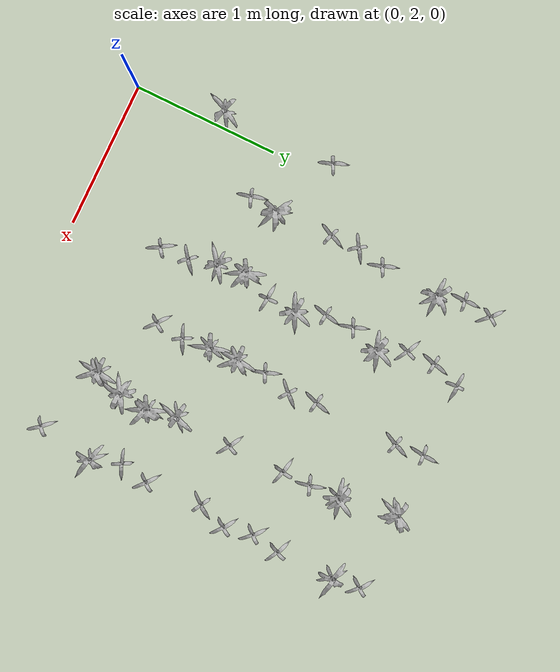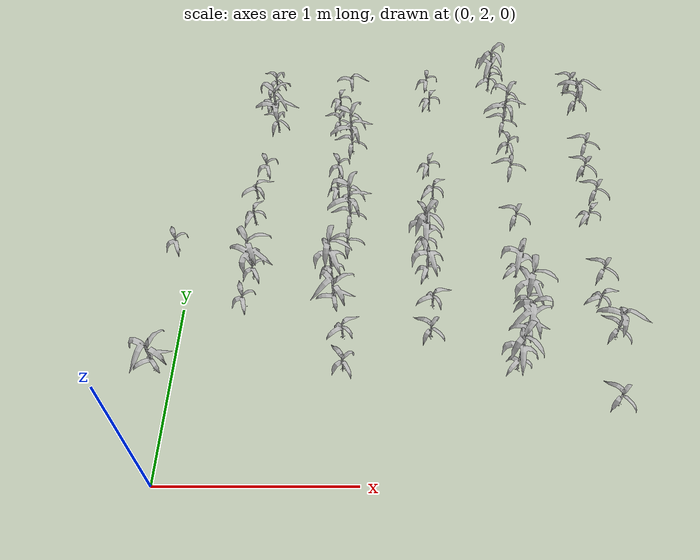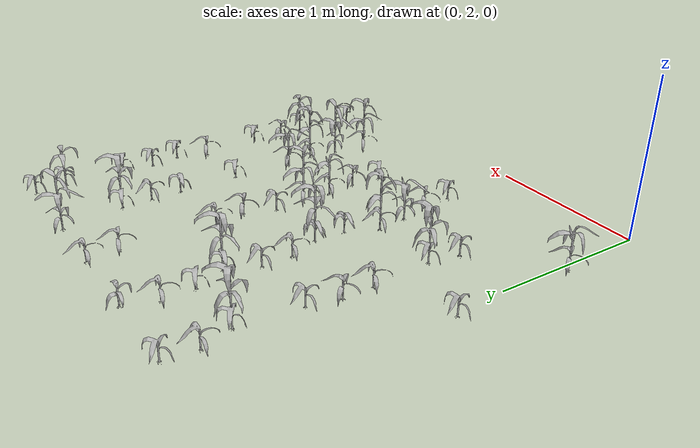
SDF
<sdf version="1.7">
 <world name="default">
  <model name="maize_-0.08042333630782769_2.6100000000000003">
   <static>1</static>
   <link name="link">
    <inertial>
     <mass>0.2</mass>
     <inertia>
      <ixx>0.166667</ixx>
      <ixy>0</ixy>
      <ixz>0</ixz>
      <iyy>0.166667</iyy>
      <iyz>0</iyz>
      <izz>0.166667</izz>
     </inertia>
    </inertial>
    <collision name="collision">
     <geometry><mesh><uri>model://corn_4/meshes/corn.dae</uri><scale>0.25 0.25 0.25</scale></mesh></geometry>
     <surface>
      <friction><ode><mu>0</mu><mu2>0</mu2></ode></friction>
      <contact><ode><kp>0</kp><kd>0</kd><max_vel>0</max_vel><min_depth>0.002</min_depth></ode></contact>
     </surface>
    </collision>
    <visual name="visual">
     <geometry><mesh><uri>model://corn_4/meshes/corn.dae</uri><scale>0.25 0.25 0.25</scale></mesh></geometry>
    </visual>
    <velocity_decay><linear>0</linear><angular>0</angular></velocity_decay>
   </link>
   <pose>-0.080423 2.61 0.05 0 -0 0.571796</pose>
  </model>
  <model name="maize_-0.085918898551127_3.3899999999999997">
   <static>1</static>
   <link name="link">
    <inertial>
     <mass>0.2</mass>
     <inertia>
      <ixx>0.166667</ixx>
      <ixy>0</ixy>
      <ixz>0</ixz>
      <iyy>0.166667</iyy>
      <iyz>0</iyz>
      <izz>0.166667</izz>
     </inertia>
    </inertial>
    <collision name="collision">
     <geometry><mesh><uri>model://corn_3/meshes/corn.dae</uri><scale>0.25 0.25 0.25</scale></mesh></geometry>
     <surface>
      <friction><ode><mu>0</mu><mu2>0</mu2></ode></friction>
      <contact><ode><kp>0</kp><kd>0</kd><max_vel>0</max_vel><min_depth>0.002</min_depth></ode></contact>
     </surface>
    </collision>
    <visual name="visual">
     <geometry><mesh><uri>model://corn_3/meshes/corn.dae</uri><scale>0.25 0.25 0.25</scale></mesh></geometry>
    </visual>
    <velocity_decay><linear>0</linear><angular>0</angular></velocity_decay>
   </link>
   <pose>-0.085919 3.39 0.05 0 -0 1.98753</pose>
  </model>
  <model name="maize_0.3411008554973863_3.000000000000001">
   <static>1</static>
   <link name="link">
    <inertial>
     <mass>0.2</mass>
     <inertia>
      <ixx>0.166667</ixx>
      <ixy>0</ixy>
      <ixz>0</ixz>
      <iyy>0.166667</iyy>
      <iyz>0</iyz>
      <izz>0.166667</izz>
     </inertia>
    </inertial>
    <collision name="collision">
     <geometry><mesh><uri>model://corn_3/meshes/corn.dae</uri><scale>0.25 0.25 0.25</scale></mesh></geometry>
     <surface>
      <friction><ode><mu>0</mu><mu2>0</mu2></ode></friction>
      <contact><ode><kp>0</kp><kd>0</kd><max_vel>0</max_vel><min_depth>0.002</min_depth></ode></contact>
     </surface>
    </collision>
    <visual name="visual">
     <geometry><mesh><uri>model://corn_3/meshes/corn.dae</uri><scale>0.25 0.25 0.25</scale></mesh></geometry>
    </visual>
    <velocity_decay><linear>0</linear><angular>0</angular></velocity_decay>
   </link>
   <pose>0.341101 3 0.05 0 -0 1.88382</pose>
  </model>
  <model name="maize_0.37378825698575685_3.1950000000000003">
   <static>1</static>
   <link name="link">
    <inertial>
     <mass>0.2</mass>
     <inertia>
      <ixx>0.166667</ixx>
      <ixy>0</ixy>
      <ixz>0</ixz>
      <iyy>0.166667</iyy>
      <iyz>0</iyz>
      <izz>0.166667</izz>
     </inertia>
    </inertial>
    <collision name="collision">
     <geometry><mesh><uri>model://corn_5/meshes/corn.dae</uri><scale>0.25 0.25 0.25</scale></mesh></geometry>
     <surface>
      <friction><ode><mu>0</mu><mu2>0</mu2></ode></friction>
      <contact><ode><kp>0</kp><kd>0</kd><max_vel>0</max_vel><min_depth>0.002</min_depth></ode></contact>
     </surface>
    </collision>
    <visual name="visual">
     <geometry><mesh><uri>model://corn_5/meshes/corn.dae</uri><scale>0.25 0.25 0.25</scale></mesh></geometry>
    </visual>
    <velocity_decay><linear>0</linear><angular>0</angular></velocity_decay>
   </link>
   <pose>0.373788 3.195 0.05 0 -0 2.13022</pose>
  </model>
  <model name="maize_0.34076048004621395_3.585">
   <static>1</static>
   <link name="link">
    <inertial>
     <mass>0.2</mass>
     <inertia>
      <ixx>0.166667</ixx>
      <ixy>0</ixy>
      <ixz>0</ixz>
      <iyy>0.166667</iyy>
      <iyz>0</iyz>
      <izz>0.166667</izz>
     </inertia>
    </inertial>
    <collision name="collision">
     <geometry><mesh><uri>model://corn_3/meshes/corn.dae</uri><scale>0.25 0.25 0.25</scale></mesh></geometry>
     <surface>
      <friction><ode><mu>0</mu><mu2>0</mu2></ode></friction>
      <contact><ode><kp>0</kp><kd>0</kd><max_vel>0</max_vel><min_depth>0.002</min_depth></ode></contact>
     </surface>
    </collision>
    <visual name="visual">
     <geometry><mesh><uri>model://corn_3/meshes/corn.dae</uri><scale>0.25 0.25 0.25</scale></mesh></geometry>
    </visual>
    <velocity_decay><linear>0</linear><angular>0</angular></velocity_decay>
   </link>
   <pose>0.34076 3.585 0.05 0 -0 1.20884</pose>
  </model>
  <model name="maize_0.33418059003254974_3.7800000000000002">
   <static>1</static>
   <link name="link">
    <inertial>
     <mass>0.2</mass>
     <inertia>
      <ixx>0.166667</ixx>
      <ixy>0</ixy>
      <ixz>0</ixz>
      <iyy>0.166667</iyy>
      <iyz>0</iyz>
      <izz>0.166667</izz>
     </inertia>
    </inertial>
    <collision name="collision">
     <geometry><mesh><uri>model://corn_3/meshes/corn.dae</uri><scale>0.25 0.25 0.25</scale></mesh></geometry>
     <surface>
      <friction><ode><mu>0</mu><mu2>0</mu2></ode></friction>
      <contact><ode><kp>0</kp><kd>0</kd><max_vel>0</max_vel><min_depth>0.002</min_depth></ode></contact>
     </surface>
    </collision>
    <visual name="visual">
     <geometry><mesh><uri>model://corn_3/meshes/corn.dae</uri><scale>0.25 0.25 0.25</scale></mesh></geometry>
    </visual>
    <velocity_decay><linear>0</linear><angular>0</angular></velocity_decay>
   </link>
   <pose>0.334181 3.78 0.05 0 -0 0.619677</pose>
  </model>
  <model name="maize_0.3775492834261159_3.9750000000000005">
   <static>1</static>
   <link name="link">
    <inertial>
     <mass>0.2</mass>
     <inertia>
      <ixx>0.166667</ixx>
      <ixy>0</ixy>
      <ixz>0</ixz>
      <iyy>0.166667</iyy>
      <iyz>0</iyz>
      <izz>0.166667</izz>
     </inertia>
    </inertial>
    <collision name="collision">
     <geometry><mesh><uri>model://corn_3/meshes/corn.dae</uri><scale>0.25 0.25 0.25</scale></mesh></geometry>
     <surface>
      <friction><ode><mu>0</mu><mu2>0</mu2></ode></friction>
      <contact><ode><kp>0</kp><kd>0</kd><max_vel>0</max_vel><min_depth>0.002</min_depth></ode></contact>
     </surface>
    </collision>
    <visual name="visual">
     <geometry><mesh><uri>model://corn_3/meshes/corn.dae</uri><scale>0.25 0.25 0.25</scale></mesh></geometry>
    </visual>
    <velocity_decay><linear>0</linear><angular>0</angular></velocity_decay>
   </link>
   <pose>0.377549 3.975 0.05 0 -0 1.95285</pose>
  </model>
  <model name="maize_0.41155645204705177_4.365000000000001">
   <static>1</static>
   <link name="link">
    <inertial>
     <mass>0.2</mass>
     <inertia>
      <ixx>0.166667</ixx>
      <ixy>0</ixy>
      <ixz>0</ixz>
      <iyy>0.166667</iyy>
      <iyz>0</iyz>
      <izz>0.166667</izz>
     </inertia>
    </inertial>
    <collision name="collision">
     <geometry><mesh><uri>model://corn_5/meshes/corn.dae</uri><scale>0.25 0.25 0.25</scale></mesh></geometry>
     <surface>
      <friction><ode><mu>0</mu><mu2>0</mu2></ode></friction>
      <contact><ode><kp>0</kp><kd>0</kd><max_vel>0</max_vel><min_depth>0.002</min_depth></ode></contact>
     </surface>
    </collision>
    <visual name="visual">
     <geometry><mesh><uri>model://corn_5/meshes/corn.dae</uri><scale>0.25 0.25 0.25</scale></mesh></geometry>
    </visual>
    <velocity_decay><linear>0</linear><angular>0</angular></velocity_decay>
   </link>
   <pose>0.411556 4.365 0.05 0 -0 2.5874</pose>
  </model>
  <model name="maize_0.3461602176183782_4.56">
   <static>1</static>
   <link name="link">
    <inertial>
     <mass>0.2</mass>
     <inertia>
      <ixx>0.166667</ixx>
      <ixy>0</ixy>
      <ixz>0</ixz>
      <iyy>0.166667</iyy>
      <iyz>0</iyz>
      <izz>0.166667</izz>
     </inertia>
    </inertial>
    <collision name="collision">
     <geometry><mesh><uri>model://corn_3/meshes/corn.dae</uri><scale>0.25 0.25 0.25</scale></mesh></geometry>
     <surface>
      <friction><ode><mu>0</mu><mu2>0</mu2></ode></friction>
      <contact><ode><kp>0</kp><kd>0</kd><max_vel>0</max_vel><min_depth>0.002</min_depth></ode></contact>
     </surface>
    </collision>
    <visual name="visual">
     <geometry><mesh><uri>model://corn_3/meshes/corn.dae</uri><scale>0.25 0.25 0.25</scale></mesh></geometry>
    </visual>
    <velocity_decay><linear>0</linear><angular>0</angular></velocity_decay>
   </link>
   <pose>0.34616 4.56 0.05 0 -0 1.61785</pose>
  </model>
  <model name="maize_0.3684425402078514_4.755">
   <static>1</static>
   <link name="link">
    <inertial>
     <mass>0.2</mass>
     <inertia>
      <ixx>0.166667</ixx>
      <ixy>0</ixy>
      <ixz>0</ixz>
      <iyy>0.166667</iyy>
      <iyz>0</iyz>
      <izz>0.166667</izz>
     </inertia>
    </inertial>
    <collision name="collision">
     <geometry><mesh><uri>model://corn_3/meshes/corn.dae</uri><scale>0.25 0.25 0.25</scale></mesh></geometry>
     <surface>
      <friction><ode><mu>0</mu><mu2>0</mu2></ode></friction>
      <contact><ode><kp>0</kp><kd>0</kd><max_vel>0</max_vel><min_depth>0.002</min_depth></ode></contact>
     </surface>
    </collision>
    <visual name="visual">
     <geometry><mesh><uri>model://corn_3/meshes/corn.dae</uri><scale>0.25 0.25 0.25</scale></mesh></geometry>
    </visual>
    <velocity_decay><linear>0</linear><angular>0</angular></velocity_decay>
   </link>
   <pose>0.368443 4.755 0.05 0 -0 2.44664</pose>
  </model>
  <model name="maize_0.897702557518457_2.6100000000000003">
   <static>1</static>
   <link name="link">
    <inertial>
     <mass>0.2</mass>
     <inertia>
      <ixx>0.166667</ixx>
      <ixy>0</ixy>
      <ixz>0</ixz>
      <iyy>0.166667</iyy>
      <iyz>0</iyz>
      <izz>0.166667</izz>
     </inertia>
    </inertial>
    <collision name="collision">
     <geometry><mesh><uri>model://corn_3/meshes/corn.dae</uri><scale>0.25 0.25 0.25</scale></mesh></geometry>
     <surface>
      <friction><ode><mu>0</mu><mu2>0</mu2></ode></friction>
      <contact><ode><kp>0</kp><kd>0</kd><max_vel>0</max_vel><min_depth>0.002</min_depth></ode></contact>
     </surface>
    </collision>
    <visual name="visual">
     <geometry><mesh><uri>model://corn_3/meshes/corn.dae</uri><scale>0.25 0.25 0.25</scale></mesh></geometry>
    </visual>
    <velocity_decay><linear>0</linear><angular>0</angular></velocity_decay>
   </link>
   <pose>0.897703 2.61 0.05 0 -0 2.17253</pose>
  </model>
  <model name="maize_0.8880366280184124_2.8050000000000006">
   <static>1</static>
   <link name="link">
    <inertial>
     <mass>0.2</mass>
     <inertia>
      <ixx>0.166667</ixx>
      <ixy>0</ixy>
      <ixz>0</ixz>
      <iyy>0.166667</iyy>
      <iyz>0</iyz>
      <izz>0.166667</izz>
     </inertia>
    </inertial>
    <collision name="collision">
     <geometry><mesh><uri>model://corn_3/meshes/corn.dae</uri><scale>0.25 0.25 0.25</scale></mesh></geometry>
     <surface>
      <friction><ode><mu>0</mu><mu2>0</mu2></ode></friction>
      <contact><ode><kp>0</kp><kd>0</kd><max_vel>0</max_vel><min_depth>0.002</min_depth></ode></contact>
     </surface>
    </collision>
    <visual name="visual">
     <geometry><mesh><uri>model://corn_3/meshes/corn.dae</uri><scale>0.25 0.25 0.25</scale></mesh></geometry>
    </visual>
    <velocity_decay><linear>0</linear><angular>0</angular></velocity_decay>
   </link>
   <pose>0.888037 2.805 0.05 0 -0 0.738506</pose>
  </model>
  <model name="maize_0.8357499517827016_3.000000000000001">
   <static>1</static>
   <link name="link">
    <inertial>
     <mass>0.2</mass>
     <inertia>
      <ixx>0.166667</ixx>
      <ixy>0</ixy>
      <ixz>0</ixz>
      <iyy>0.166667</iyy>
      <iyz>0</iyz>
      <izz>0.166667</izz>
     </inertia>
    </inertial>
    <collision name="collision">
     <geometry><mesh><uri>model://corn_4/meshes/corn.dae</uri><scale>0.25 0.25 0.25</scale></mesh></geometry>
     <surface>
      <friction><ode><mu>0</mu><mu2>0</mu2></ode></friction>
      <contact><ode><kp>0</kp><kd>0</kd><max_vel>0</max_vel><min_depth>0.002</min_depth></ode></contact>
     </surface>
    </collision>
    <visual name="visual">
     <geometry><mesh><uri>model://corn_4/meshes/corn.dae</uri><scale>0.25 0.25 0.25</scale></mesh></geometry>
    </visual>
    <velocity_decay><linear>0</linear><angular>0</angular></velocity_decay>
   </link>
   <pose>0.83575 3 0.05 0 -0 0.106267</pose>
  </model>
  <model name="maize_0.8121609762686527_3.1950000000000003">
   <static>1</static>
   <link name="link">
    <inertial>
     <mass>0.2</mass>
     <inertia>
      <ixx>0.166667</ixx>
      <ixy>0</ixy>
      <ixz>0</ixz>
      <iyy>0.166667</iyy>
      <iyz>0</iyz>
      <izz>0.166667</izz>
     </inertia>
    </inertial>
    <collision name="collision">
     <geometry><mesh><uri>model://corn_5/meshes/corn.dae</uri><scale>0.25 0.25 0.25</scale></mesh></geometry>
     <surface>
      <friction><ode><mu>0</mu><mu2>0</mu2></ode></friction>
      <contact><ode><kp>0</kp><kd>0</kd><max_vel>0</max_vel><min_depth>0.002</min_depth></ode></contact>
     </surface>
    </collision>
    <visual name="visual">
     <geometry><mesh><uri>model://corn_5/meshes/corn.dae</uri><scale>0.25 0.25 0.25</scale></mesh></geometry>
    </visual>
    <velocity_decay><linear>0</linear><angular>0</angular></velocity_decay>
   </link>
   <pose>0.812161 3.195 0.05 0 -0 1.44151</pose>
  </model>
  <model name="maize_0.8960195117216863_3.3899999999999997">
   <static>1</static>
   <link name="link">
    <inertial>
     <mass>0.2</mass>
     <inertia>
      <ixx>0.166667</ixx>
      <ixy>0</ixy>
      <ixz>0</ixz>
      <iyy>0.166667</iyy>
      <iyz>0</iyz>
      <izz>0.166667</izz>
     </inertia>
    </inertial>
    <collision name="collision">
     <geometry><mesh><uri>model://corn_3/meshes/corn.dae</uri><scale>0.25 0.25 0.25</scale></mesh></geometry>
     <surface>
      <friction><ode><mu>0</mu><mu2>0</mu2></ode></friction>
      <contact><ode><kp>0</kp><kd>0</kd><max_vel>0</max_vel><min_depth>0.002</min_depth></ode></contact>
     </surface>
    </collision>
    <visual name="visual">
     <geometry><mesh><uri>model://corn_3/meshes/corn.dae</uri><scale>0.25 0.25 0.25</scale></mesh></geometry>
    </visual>
    <velocity_decay><linear>0</linear><angular>0</angular></velocity_decay>
   </link>
   <pose>0.89602 3.39 0.05 0 -0 3.11103</pose>
  </model>
  <model name="maize_0.9029863530750648_3.585">
   <static>1</static>
   <link name="link">
    <inertial>
     <mass>0.2</mass>
     <inertia>
      <ixx>0.166667</ixx>
      <ixy>0</ixy>
      <ixz>0</ixz>
      <iyy>0.166667</iyy>
      <iyz>0</iyz>
      <izz>0.166667</izz>
     </inertia>
    </inertial>
    <collision name="collision">
     <geometry><mesh><uri>model://corn_5/meshes/corn.dae</uri><scale>0.25 0.25 0.25</scale></mesh></geometry>
     <surface>
      <friction><ode><mu>0</mu><mu2>0</mu2></ode></friction>
      <contact><ode><kp>0</kp><kd>0</kd><max_vel>0</max_vel><min_depth>0.002</min_depth></ode></contact>
     </surface>
    </collision>
    <visual name="visual">
     <geometry><mesh><uri>model://corn_5/meshes/corn.dae</uri><scale>0.25 0.25 0.25</scale></mesh></geometry>
    </visual>
    <velocity_decay><linear>0</linear><angular>0</angular></velocity_decay>
   </link>
   <pose>0.902986 3.585 0.05 0 -0 3.03287</pose>
  </model>
  <model name="maize_0.8257128723859354_3.7800000000000002">
   <static>1</static>
   <link name="link">
    <inertial>
     <mass>0.2</mass>
     <inertia>
      <ixx>0.166667</ixx>
      <ixy>0</ixy>
      <ixz>0</ixz>
      <iyy>0.166667</iyy>
      <iyz>0</iyz>
      <izz>0.166667</izz>
     </inertia>
    </inertial>
    <collision name="collision">
     <geometry><mesh><uri>model://corn_3/meshes/corn.dae</uri><scale>0.25 0.25 0.25</scale></mesh></geometry>
     <surface>
      <friction><ode><mu>0</mu><mu2>0</mu2></ode></friction>
      <contact><ode><kp>0</kp><kd>0</kd><max_vel>0</max_vel><min_depth>0.002</min_depth></ode></contact>
     </surface>
    </collision>
    <visual name="visual">
     <geometry><mesh><uri>model://corn_3/meshes/corn.dae</uri><scale>0.25 0.25 0.25</scale></mesh></geometry>
    </visual>
    <velocity_decay><linear>0</linear><angular>0</angular></velocity_decay>
   </link>
   <pose>0.825713 3.78 0.05 0 -0 1.40702</pose>
  </model>
  <model name="maize_0.8211886158206442_3.9750000000000005">
   <static>1</static>
   <link name="link">
    <inertial>
     <mass>0.2</mass>
     <inertia>
      <ixx>0.166667</ixx>
      <ixy>0</ixy>
      <ixz>0</ixz>
      <iyy>0.166667</iyy>
      <iyz>0</iyz>
      <izz>0.166667</izz>
     </inertia>
    </inertial>
    <collision name="collision">
     <geometry><mesh><uri>model://corn_3/meshes/corn.dae</uri><scale>0.25 0.25 0.25</scale></mesh></geometry>
     <surface>
      <friction><ode><mu>0</mu><mu2>0</mu2></ode></friction>
      <contact><ode><kp>0</kp><kd>0</kd><max_vel>0</max_vel><min_depth>0.002</min_depth></ode></contact>
     </surface>
    </collision>
    <visual name="visual">
     <geometry><mesh><uri>model://corn_3/meshes/corn.dae</uri><scale>0.25 0.25 0.25</scale></mesh></geometry>
    </visual>
    <velocity_decay><linear>0</linear><angular>0</angular></velocity_decay>
   </link>
   <pose>0.821189 3.975 0.05 0 -0 1.94189</pose>
  </model>
  <model name="maize_0.8956969560083625_4.170000000000001">
   <static>1</static>
   <link name="link">
    <inertial>
     <mass>0.2</mass>
     <inertia>
      <ixx>0.166667</ixx>
      <ixy>0</ixy>
      <ixz>0</ixz>
      <iyy>0.166667</iyy>
      <iyz>0</iyz>
      <izz>0.166667</izz>
     </inertia>
    </inertial>
    <collision name="collision">
     <geometry><mesh><uri>model://corn_5/meshes/corn.dae</uri><scale>0.25 0.25 0.25</scale></mesh></geometry>
     <surface>
      <friction><ode><mu>0</mu><mu2>0</mu2></ode></friction>
      <contact><ode><kp>0</kp><kd>0</kd><max_vel>0</max_vel><min_depth>0.002</min_depth></ode></contact>
     </surface>
    </collision>
    <visual name="visual">
     <geometry><mesh><uri>model://corn_5/meshes/corn.dae</uri><scale>0.25 0.25 0.25</scale></mesh></geometry>
    </visual>
    <velocity_decay><linear>0</linear><angular>0</angular></velocity_decay>
   </link>
   <pose>0.895697 4.17 0.05 0 -0 2.92846</pose>
  </model>
  <model name="maize_0.8104739515235799_4.365000000000001">
   <static>1</static>
   <link name="link">
    <inertial>
     <mass>0.2</mass>
     <inertia>
      <ixx>0.166667</ixx>
      <ixy>0</ixy>
      <ixz>0</ixz>
      <iyy>0.166667</iyy>
      <iyz>0</iyz>
      <izz>0.166667</izz>
     </inertia>
    </inertial>
    <collision name="collision">
     <geometry><mesh><uri>model://corn_3/meshes/corn.dae</uri><scale>0.25 0.25 0.25</scale></mesh></geometry>
     <surface>
      <friction><ode><mu>0</mu><mu2>0</mu2></ode></friction>
      <contact><ode><kp>0</kp><kd>0</kd><max_vel>0</max_vel><min_depth>0.002</min_depth></ode></contact>
     </surface>
    </collision>
    <visual name="visual">
     <geometry><mesh><uri>model://corn_3/meshes/corn.dae</uri><scale>0.25 0.25 0.25</scale></mesh></geometry>
    </visual>
    <velocity_decay><linear>0</linear><angular>0</angular></velocity_decay>
   </link>
   <pose>0.810474 4.365 0.05 0 -0 2.7183</pose>
  </model>
  <model name="maize_0.8064081126665279_4.56">
   <static>1</static>
   <link name="link">
    <inertial>
     <mass>0.2</mass>
     <inertia>
      <ixx>0.166667</ixx>
      <ixy>0</ixy>
      <ixz>0</ixz>
      <iyy>0.166667</iyy>
      <iyz>0</iyz>
      <izz>0.166667</izz>
     </inertia>
    </inertial>
    <collision name="collision">
     <geometry><mesh><uri>model://corn_3/meshes/corn.dae</uri><scale>0.25 0.25 0.25</scale></mesh></geometry>
     <surface>
      <friction><ode><mu>0</mu><mu2>0</mu2></ode></friction>
      <contact><ode><kp>0</kp><kd>0</kd><max_vel>0</max_vel><min_depth>0.002</min_depth></ode></contact>
     </surface>
    </collision>
    <visual name="visual">
     <geometry><mesh><uri>model://corn_3/meshes/corn.dae</uri><scale>0.25 0.25 0.25</scale></mesh></geometry>
    </visual>
    <velocity_decay><linear>0</linear><angular>0</angular></velocity_decay>
   </link>
   <pose>0.806408 4.56 0.05 0 -0 1.3644</pose>
  </model>
  <model name="maize_0.8731541109942756_4.755">
   <static>1</static>
   <link name="link">
    <inertial>
     <mass>0.2</mass>
     <inertia>
      <ixx>0.166667</ixx>
      <ixy>0</ixy>
      <ixz>0</ixz>
      <iyy>0.166667</iyy>
      <iyz>0</iyz>
      <izz>0.166667</izz>
     </inertia>
    </inertial>
    <collision name="collision">
     <geometry><mesh><uri>model://corn_3/meshes/corn.dae</uri><scale>0.25 0.25 0.25</scale></mesh></geometry>
     <surface>
      <friction><ode><mu>0</mu><mu2>0</mu2></ode></friction>
      <contact><ode><kp>0</kp><kd>0</kd><max_vel>0</max_vel><min_depth>0.002</min_depth></ode></contact>
     </surface>
    </collision>
    <visual name="visual">
     <geometry><mesh><uri>model://corn_3/meshes/corn.dae</uri><scale>0.25 0.25 0.25</scale></mesh></geometry>
    </visual>
    <velocity_decay><linear>0</linear><angular>0</angular></velocity_decay>
   </link>
   <pose>0.873154 4.755 0.05 0 -0 0.007766</pose>
  </model>
  <model name="maize_1.3567621947153226_2.8050000000000006">
   <static>1</static>
   <link name="link">
    <inertial>
     <mass>0.2</mass>
     <inertia>
      <ixx>0.166667</ixx>
      <ixy>0</ixy>
      <ixz>0</ixz>
      <iyy>0.166667</iyy>
      <iyz>0</iyz>
      <izz>0.166667</izz>
     </inertia>
    </inertial>
    <collision name="collision">
     <geometry><mesh><uri>model://corn_3/meshes/corn.dae</uri><scale>0.25 0.25 0.25</scale></mesh></geometry>
     <surface>
      <friction><ode><mu>0</mu><mu2>0</mu2></ode></friction>
      <contact><ode><kp>0</kp><kd>0</kd><max_vel>0</max_vel><min_depth>0.002</min_depth></ode></contact>
     </surface>
    </collision>
    <visual name="visual">
     <geometry><mesh><uri>model://corn_3/meshes/corn.dae</uri><scale>0.25 0.25 0.25</scale></mesh></geometry>
    </visual>
    <velocity_decay><linear>0</linear><angular>0</angular></velocity_decay>
   </link>
   <pose>1.35676 2.805 0.05 0 -0 2.51339</pose>
  </model>
  <model name="maize_1.3729802893059577_3.000000000000001">
   <static>1</static>
   <link name="link">
    <inertial>
     <mass>0.2</mass>
     <inertia>
      <ixx>0.166667</ixx>
      <ixy>0</ixy>
      <ixz>0</ixz>
      <iyy>0.166667</iyy>
      <iyz>0</iyz>
      <izz>0.166667</izz>
     </inertia>
    </inertial>
    <collision name="collision">
     <geometry><mesh><uri>model://corn_3/meshes/corn.dae</uri><scale>0.25 0.25 0.25</scale></mesh></geometry>
     <surface>
      <friction><ode><mu>0</mu><mu2>0</mu2></ode></friction>
      <contact><ode><kp>0</kp><kd>0</kd><max_vel>0</max_vel><min_depth>0.002</min_depth></ode></contact>
     </surface>
    </collision>
    <visual name="visual">
     <geometry><mesh><uri>model://corn_3/meshes/corn.dae</uri><scale>0.25 0.25 0.25</scale></mesh></geometry>
    </visual>
    <velocity_decay><linear>0</linear><angular>0</angular></velocity_decay>
   </link>
   <pose>1.37298 3 0.05 0 -0 0.491877</pose>
  </model>
  <model name="maize_1.347163401348422_3.1950000000000003">
   <static>1</static>
   <link name="link">
    <inertial>
     <mass>0.2</mass>
     <inertia>
      <ixx>0.166667</ixx>
      <ixy>0</ixy>
      <ixz>0</ixz>
      <iyy>0.166667</iyy>
      <iyz>0</iyz>
      <izz>0.166667</izz>
     </inertia>
    </inertial>
    <collision name="collision">
     <geometry><mesh><uri>model://corn_4/meshes/corn.dae</uri><scale>0.25 0.25 0.25</scale></mesh></geometry>
     <surface>
      <friction><ode><mu>0</mu><mu2>0</mu2></ode></friction>
      <contact><ode><kp>0</kp><kd>0</kd><max_vel>0</max_vel><min_depth>0.002</min_depth></ode></contact>
     </surface>
    </collision>
    <visual name="visual">
     <geometry><mesh><uri>model://corn_4/meshes/corn.dae</uri><scale>0.25 0.25 0.25</scale></mesh></geometry>
    </visual>
    <velocity_decay><linear>0</linear><angular>0</angular></velocity_decay>
   </link>
   <pose>1.34716 3.195 0.05 0 -0 1.32418</pose>
  </model>
  <model name="maize_1.3411687731867048_3.3899999999999997">
   <static>1</static>
   <link name="link">
    <inertial>
     <mass>0.2</mass>
     <inertia>
      <ixx>0.166667</ixx>
      <ixy>0</ixy>
      <ixz>0</ixz>
      <iyy>0.166667</iyy>
      <iyz>0</iyz>
      <izz>0.166667</izz>
     </inertia>
    </inertial>
    <collision name="collision">
     <geometry><mesh><uri>model://corn_5/meshes/corn.dae</uri><scale>0.25 0.25 0.25</scale></mesh></geometry>
     <surface>
      <friction><ode><mu>0</mu><mu2>0</mu2></ode></friction>
      <contact><ode><kp>0</kp><kd>0</kd><max_vel>0</max_vel><min_depth>0.002</min_depth></ode></contact>
     </surface>
    </collision>
    <visual name="visual">
     <geometry><mesh><uri>model://corn_5/meshes/corn.dae</uri><scale>0.25 0.25 0.25</scale></mesh></geometry>
    </visual>
    <velocity_decay><linear>0</linear><angular>0</angular></velocity_decay>
   </link>
   <pose>1.34117 3.39 0.05 0 -0 0.95794</pose>
  </model>
  <model name="maize_1.3396354472477983_3.585">
   <static>1</static>
   <link name="link">
    <inertial>
     <mass>0.2</mass>
     <inertia>
      <ixx>0.166667</ixx>
      <ixy>0</ixy>
      <ixz>0</ixz>
      <iyy>0.166667</iyy>
      <iyz>0</iyz>
      <izz>0.166667</izz>
     </inertia>
    </inertial>
    <collision name="collision">
     <geometry><mesh><uri>model://corn_3/meshes/corn.dae</uri><scale>0.25 0.25 0.25</scale></mesh></geometry>
     <surface>
      <friction><ode><mu>0</mu><mu2>0</mu2></ode></friction>
      <contact><ode><kp>0</kp><kd>0</kd><max_vel>0</max_vel><min_depth>0.002</min_depth></ode></contact>
     </surface>
    </collision>
    <visual name="visual">
     <geometry><mesh><uri>model://corn_3/meshes/corn.dae</uri><scale>0.25 0.25 0.25</scale></mesh></geometry>
    </visual>
    <velocity_decay><linear>0</linear><angular>0</angular></velocity_decay>
   </link>
   <pose>1.33963 3.585 0.05 0 -0 1.96043</pose>
  </model>
  <model name="maize_1.3942334036835646_3.7800000000000002">
   <static>1</static>
   <link name="link">
    <inertial>
     <mass>0.2</mass>
     <inertia>
      <ixx>0.166667</ixx>
      <ixy>0</ixy>
      <ixz>0</ixz>
      <iyy>0.166667</iyy>
      <iyz>0</iyz>
      <izz>0.166667</izz>
     </inertia>
    </inertial>
    <collision name="collision">
     <geometry><mesh><uri>model://corn_3/meshes/corn.dae</uri><scale>0.25 0.25 0.25</scale></mesh></geometry>
     <surface>
      <friction><ode><mu>0</mu><mu2>0</mu2></ode></friction>
      <contact><ode><kp>0</kp><kd>0</kd><max_vel>0</max_vel><min_depth>0.002</min_depth></ode></contact>
     </surface>
    </collision>
    <visual name="visual">
     <geometry><mesh><uri>model://corn_3/meshes/corn.dae</uri><scale>0.25 0.25 0.25</scale></mesh></geometry>
    </visual>
    <velocity_decay><linear>0</linear><angular>0</angular></velocity_decay>
   </link>
   <pose>1.39423 3.78 0.05 0 -0 0.867239</pose>
  </model>
  <model name="maize_1.370692930371483_3.9750000000000005">
   <static>1</static>
   <link name="link">
    <inertial>
     <mass>0.2</mass>
     <inertia>
      <ixx>0.166667</ixx>
      <ixy>0</ixy>
      <ixz>0</ixz>
      <iyy>0.166667</iyy>
      <iyz>0</iyz>
      <izz>0.166667</izz>
     </inertia>
    </inertial>
    <collision name="collision">
     <geometry><mesh><uri>model://corn_3/meshes/corn.dae</uri><scale>0.25 0.25 0.25</scale></mesh></geometry>
     <surface>
      <friction><ode><mu>0</mu><mu2>0</mu2></ode></friction>
      <contact><ode><kp>0</kp><kd>0</kd><max_vel>0</max_vel><min_depth>0.002</min_depth></ode></contact>
     </surface>
    </collision>
    <visual name="visual">
     <geometry><mesh><uri>model://corn_3/meshes/corn.dae</uri><scale>0.25 0.25 0.25</scale></mesh></geometry>
    </visual>
    <velocity_decay><linear>0</linear><angular>0</angular></velocity_decay>
   </link>
   <pose>1.37069 3.975 0.05 0 -0 1.33807</pose>
  </model>
  <model name="maize_1.3905908587778428_4.56">
   <static>1</static>
   <link name="link">
    <inertial>
     <mass>0.2</mass>
     <inertia>
      <ixx>0.166667</ixx>
      <ixy>0</ixy>
      <ixz>0</ixz>
      <iyy>0.166667</iyy>
      <iyz>0</iyz>
      <izz>0.166667</izz>
     </inertia>
    </inertial>
    <collision name="collision">
     <geometry><mesh><uri>model://corn_3/meshes/corn.dae</uri><scale>0.25 0.25 0.25</scale></mesh></geometry>
     <surface>
      <friction><ode><mu>0</mu><mu2>0</mu2></ode></friction>
      <contact><ode><kp>0</kp><kd>0</kd><max_vel>0</max_vel><min_depth>0.002</min_depth></ode></contact>
     </surface>
    </collision>
    <visual name="visual">
     <geometry><mesh><uri>model://corn_3/meshes/corn.dae</uri><scale>0.25 0.25 0.25</scale></mesh></geometry>
    </visual>
    <velocity_decay><linear>0</linear><angular>0</angular></velocity_decay>
   </link>
   <pose>1.39059 4.56 0.05 0 -0 1.20101</pose>
  </model>
  <model name="maize_1.3751360725001782_4.755">
   <static>1</static>
   <link name="link">
    <inertial>
     <mass>0.2</mass>
     <inertia>
      <ixx>0.166667</ixx>
      <ixy>0</ixy>
      <ixz>0</ixz>
      <iyy>0.166667</iyy>
      <iyz>0</iyz>
      <izz>0.166667</izz>
     </inertia>
    </inertial>
    <collision name="collision">
     <geometry><mesh><uri>model://corn_3/meshes/corn.dae</uri><scale>0.25 0.25 0.25</scale></mesh></geometry>
     <surface>
      <friction><ode><mu>0</mu><mu2>0</mu2></ode></friction>
      <contact><ode><kp>0</kp><kd>0</kd><max_vel>0</max_vel><min_depth>0.002</min_depth></ode></contact>
     </surface>
    </collision>
    <visual name="visual">
     <geometry><mesh><uri>model://corn_3/meshes/corn.dae</uri><scale>0.25 0.25 0.25</scale></mesh></geometry>
    </visual>
    <velocity_decay><linear>0</linear><angular>0</angular></velocity_decay>
   </link>
   <pose>1.37514 4.755 0.05 0 -0 1.54441</pose>
  </model>
  <model name="maize_1.802517484386832_2.6100000000000003">
   <static>1</static>
   <link name="link">
    <inertial>
     <mass>0.2</mass>
     <inertia>
      <ixx>0.166667</ixx>
      <ixy>0</ixy>
      <ixz>0</ixz>
      <iyy>0.166667</iyy>
      <iyz>0</iyz>
      <izz>0.166667</izz>
     </inertia>
    </inertial>
    <collision name="collision">
     <geometry><mesh><uri>model://corn_5/meshes/corn.dae</uri><scale>0.25 0.25 0.25</scale></mesh></geometry>
     <surface>
      <friction><ode><mu>0</mu><mu2>0</mu2></ode></friction>
      <contact><ode><kp>0</kp><kd>0</kd><max_vel>0</max_vel><min_depth>0.002</min_depth></ode></contact>
     </surface>
    </collision>
    <visual name="visual">
     <geometry><mesh><uri>model://corn_5/meshes/corn.dae</uri><scale>0.25 0.25 0.25</scale></mesh></geometry>
    </visual>
    <velocity_decay><linear>0</linear><angular>0</angular></velocity_decay>
   </link>
   <pose>1.80252 2.61 0.05 0 -0 0.928523</pose>
  </model>
  <model name="maize_1.8680583717316879_2.8050000000000006">
   <static>1</static>
   <link name="link">
    <inertial>
     <mass>0.2</mass>
     <inertia>
      <ixx>0.166667</ixx>
      <ixy>0</ixy>
      <ixz>0</ixz>
      <iyy>0.166667</iyy>
      <iyz>0</iyz>
      <izz>0.166667</izz>
     </inertia>
    </inertial>
    <collision name="collision">
     <geometry><mesh><uri>model://corn_5/meshes/corn.dae</uri><scale>0.25 0.25 0.25</scale></mesh></geometry>
     <surface>
      <friction><ode><mu>0</mu><mu2>0</mu2></ode></friction>
      <contact><ode><kp>0</kp><kd>0</kd><max_vel>0</max_vel><min_depth>0.002</min_depth></ode></contact>
     </surface>
    </collision>
    <visual name="visual">
     <geometry><mesh><uri>model://corn_5/meshes/corn.dae</uri><scale>0.25 0.25 0.25</scale></mesh></geometry>
    </visual>
    <velocity_decay><linear>0</linear><angular>0</angular></velocity_decay>
   </link>
   <pose>1.86806 2.805 0.05 0 -0 0.008195</pose>
  </model>
  <model name="maize_1.8862348391224741_3.000000000000001">
   <static>1</static>
   <link name="link">
    <inertial>
     <mass>0.2</mass>
     <inertia>
      <ixx>0.166667</ixx>
      <ixy>0</ixy>
      <ixz>0</ixz>
      <iyy>0.166667</iyy>
      <iyz>0</iyz>
      <izz>0.166667</izz>
     </inertia>
    </inertial>
    <collision name="collision">
     <geometry><mesh><uri>model://corn_5/meshes/corn.dae</uri><scale>0.25 0.25 0.25</scale></mesh></geometry>
     <surface>
      <friction><ode><mu>0</mu><mu2>0</mu2></ode></friction>
      <contact><ode><kp>0</kp><kd>0</kd><max_vel>0</max_vel><min_depth>0.002</min_depth></ode></contact>
     </surface>
    </collision>
    <visual name="visual">
     <geometry><mesh><uri>model://corn_5/meshes/corn.dae</uri><scale>0.25 0.25 0.25</scale></mesh></geometry>
    </visual>
    <velocity_decay><linear>0</linear><angular>0</angular></velocity_decay>
   </link>
   <pose>1.88624 3 0.05 0 -0 1.42082</pose>
  </model>
  <model name="maize_1.8453913098435553_3.1950000000000003">
   <static>1</static>
   <link name="link">
    <inertial>
     <mass>0.2</mass>
     <inertia>
      <ixx>0.166667</ixx>
      <ixy>0</ixy>
      <ixz>0</ixz>
      <iyy>0.166667</iyy>
      <iyz>0</iyz>
      <izz>0.166667</izz>
     </inertia>
    </inertial>
    <collision name="collision">
     <geometry><mesh><uri>model://corn_4/meshes/corn.dae</uri><scale>0.25 0.25 0.25</scale></mesh></geometry>
     <surface>
      <friction><ode><mu>0</mu><mu2>0</mu2></ode></friction>
      <contact><ode><kp>0</kp><kd>0</kd><max_vel>0</max_vel><min_depth>0.002</min_depth></ode></contact>
     </surface>
    </collision>
    <visual name="visual">
     <geometry><mesh><uri>model://corn_4/meshes/corn.dae</uri><scale>0.25 0.25 0.25</scale></mesh></geometry>
    </visual>
    <velocity_decay><linear>0</linear><angular>0</angular></velocity_decay>
   </link>
   <pose>1.84539 3.195 0.05 0 -0 0.749593</pose>
  </model>
  <model name="maize_1.8749098716949115_3.585">
   <static>1</static>
   <link name="link">
    <inertial>
     <mass>0.2</mass>
     <inertia>
      <ixx>0.166667</ixx>
      <ixy>0</ixy>
      <ixz>0</ixz>
      <iyy>0.166667</iyy>
      <iyz>0</iyz>
      <izz>0.166667</izz>
     </inertia>
    </inertial>
    <collision name="collision">
     <geometry><mesh><uri>model://corn_3/meshes/corn.dae</uri><scale>0.25 0.25 0.25</scale></mesh></geometry>
     <surface>
      <friction><ode><mu>0</mu><mu2>0</mu2></ode></friction>
      <contact><ode><kp>0</kp><kd>0</kd><max_vel>0</max_vel><min_depth>0.002</min_depth></ode></contact>
     </surface>
    </collision>
    <visual name="visual">
     <geometry><mesh><uri>model://corn_3/meshes/corn.dae</uri><scale>0.25 0.25 0.25</scale></mesh></geometry>
    </visual>
    <velocity_decay><linear>0</linear><angular>0</angular></velocity_decay>
   </link>
   <pose>1.87491 3.585 0.05 0 -0 2.65627</pose>
  </model>
  <model name="maize_1.8762819606935937_3.9750000000000005">
   <static>1</static>
   <link name="link">
    <inertial>
     <mass>0.2</mass>
     <inertia>
      <ixx>0.166667</ixx>
      <ixy>0</ixy>
      <ixz>0</ixz>
      <iyy>0.166667</iyy>
      <iyz>0</iyz>
      <izz>0.166667</izz>
     </inertia>
    </inertial>
    <collision name="collision">
     <geometry><mesh><uri>model://corn_3/meshes/corn.dae</uri><scale>0.25 0.25 0.25</scale></mesh></geometry>
     <surface>
      <friction><ode><mu>0</mu><mu2>0</mu2></ode></friction>
      <contact><ode><kp>0</kp><kd>0</kd><max_vel>0</max_vel><min_depth>0.002</min_depth></ode></contact>
     </surface>
    </collision>
    <visual name="visual">
     <geometry><mesh><uri>model://corn_3/meshes/corn.dae</uri><scale>0.25 0.25 0.25</scale></mesh></geometry>
    </visual>
    <velocity_decay><linear>0</linear><angular>0</angular></velocity_decay>
   </link>
   <pose>1.87628 3.975 0.05 0 -0 2.96839</pose>
  </model>
  <model name="maize_1.878138970591431_4.170000000000001">
   <static>1</static>
   <link name="link">
    <inertial>
     <mass>0.2</mass>
     <inertia>
      <ixx>0.166667</ixx>
      <ixy>0</ixy>
      <ixz>0</ixz>
      <iyy>0.166667</iyy>
      <iyz>0</iyz>
      <izz>0.166667</izz>
     </inertia>
    </inertial>
    <collision name="collision">
     <geometry><mesh><uri>model://corn_3/meshes/corn.dae</uri><scale>0.25 0.25 0.25</scale></mesh></geometry>
     <surface>
      <friction><ode><mu>0</mu><mu2>0</mu2></ode></friction>
      <contact><ode><kp>0</kp><kd>0</kd><max_vel>0</max_vel><min_depth>0.002</min_depth></ode></contact>
     </surface>
    </collision>
    <visual name="visual">
     <geometry><mesh><uri>model://corn_3/meshes/corn.dae</uri><scale>0.25 0.25 0.25</scale></mesh></geometry>
    </visual>
    <velocity_decay><linear>0</linear><angular>0</angular></velocity_decay>
   </link>
   <pose>1.87814 4.17 0.05 0 -0 1.88116</pose>
  </model>
  <model name="maize_1.862352009154159_4.365000000000001">
   <static>1</static>
   <link name="link">
    <inertial>
     <mass>0.2</mass>
     <inertia>
      <ixx>0.166667</ixx>
      <ixy>0</ixy>
      <ixz>0</ixz>
      <iyy>0.166667</iyy>
      <iyz>0</iyz>
      <izz>0.166667</izz>
     </inertia>
    </inertial>
    <collision name="collision">
     <geometry><mesh><uri>model://corn_5/meshes/corn.dae</uri><scale>0.25 0.25 0.25</scale></mesh></geometry>
     <surface>
      <friction><ode><mu>0</mu><mu2>0</mu2></ode></friction>
      <contact><ode><kp>0</kp><kd>0</kd><max_vel>0</max_vel><min_depth>0.002</min_depth></ode></contact>
     </surface>
    </collision>
    <visual name="visual">
     <geometry><mesh><uri>model://corn_5/meshes/corn.dae</uri><scale>0.25 0.25 0.25</scale></mesh></geometry>
    </visual>
    <velocity_decay><linear>0</linear><angular>0</angular></velocity_decay>
   </link>
   <pose>1.86235 4.365 0.05 0 -0 2.83283</pose>
  </model>
  <model name="maize_1.7958746556683818_4.755">
   <static>1</static>
   <link name="link">
    <inertial>
     <mass>0.2</mass>
     <inertia>
      <ixx>0.166667</ixx>
      <ixy>0</ixy>
      <ixz>0</ixz>
      <iyy>0.166667</iyy>
      <iyz>0</iyz>
      <izz>0.166667</izz>
     </inertia>
    </inertial>
    <collision name="collision">
     <geometry><mesh><uri>model://corn_5/meshes/corn.dae</uri><scale>0.25 0.25 0.25</scale></mesh></geometry>
     <surface>
      <friction><ode><mu>0</mu><mu2>0</mu2></ode></friction>
      <contact><ode><kp>0</kp><kd>0</kd><max_vel>0</max_vel><min_depth>0.002</min_depth></ode></contact>
     </surface>
    </collision>
    <visual name="visual">
     <geometry><mesh><uri>model://corn_5/meshes/corn.dae</uri><scale>0.25 0.25 0.25</scale></mesh></geometry>
    </visual>
    <velocity_decay><linear>0</linear><angular>0</angular></velocity_decay>
   </link>
   <pose>1.79588 4.755 0.05 0 -0 0.60906</pose>
  </model>
  <model name="maize_2.29702405215403_2.415">
   <static>1</static>
   <link name="link">
    <inertial>
     <mass>0.2</mass>
     <inertia>
      <ixx>0.166667</ixx>
      <ixy>0</ixy>
      <ixz>0</ixz>
      <iyy>0.166667</iyy>
      <iyz>0</iyz>
      <izz>0.166667</izz>
     </inertia>
    </inertial>
    <collision name="collision">
     <geometry><mesh><uri>model://corn_3/meshes/corn.dae</uri><scale>0.25 0.25 0.25</scale></mesh></geometry>
     <surface>
      <friction><ode><mu>0</mu><mu2>0</mu2></ode></friction>
      <contact><ode><kp>0</kp><kd>0</kd><max_vel>0</max_vel><min_depth>0.002</min_depth></ode></contact>
     </surface>
    </collision>
    <visual name="visual">
     <geometry><mesh><uri>model://corn_3/meshes/corn.dae</uri><scale>0.25 0.25 0.25</scale></mesh></geometry>
    </visual>
    <velocity_decay><linear>0</linear><angular>0</angular></velocity_decay>
   </link>
   <pose>2.29702 2.415 0.05 0 -0 2.34512</pose>
  </model>
  <model name="maize_2.3450540498331423_2.8050000000000006">
   <static>1</static>
   <link name="link">
    <inertial>
     <mass>0.2</mass>
     <inertia>
      <ixx>0.166667</ixx>
      <ixy>0</ixy>
      <ixz>0</ixz>
      <iyy>0.166667</iyy>
      <iyz>0</iyz>
      <izz>0.166667</izz>
     </inertia>
    </inertial>
    <collision name="collision">
     <geometry><mesh><uri>model://corn_4/meshes/corn.dae</uri><scale>0.25 0.25 0.25</scale></mesh></geometry>
     <surface>
      <friction><ode><mu>0</mu><mu2>0</mu2></ode></friction>
      <contact><ode><kp>0</kp><kd>0</kd><max_vel>0</max_vel><min_depth>0.002</min_depth></ode></contact>
     </surface>
    </collision>
    <visual name="visual">
     <geometry><mesh><uri>model://corn_4/meshes/corn.dae</uri><scale>0.25 0.25 0.25</scale></mesh></geometry>
    </visual>
    <velocity_decay><linear>0</linear><angular>0</angular></velocity_decay>
   </link>
   <pose>2.34505 2.805 0.05 0 -0 2.33485</pose>
  </model>
  <model name="maize_2.284074444134387_3.000000000000001">
   <static>1</static>
   <link name="link">
    <inertial>
     <mass>0.2</mass>
     <inertia>
      <ixx>0.166667</ixx>
      <ixy>0</ixy>
      <ixz>0</ixz>
      <iyy>0.166667</iyy>
      <iyz>0</iyz>
      <izz>0.166667</izz>
     </inertia>
    </inertial>
    <collision name="collision">
     <geometry><mesh><uri>model://corn_3/meshes/corn.dae</uri><scale>0.25 0.25 0.25</scale></mesh></geometry>
     <surface>
      <friction><ode><mu>0</mu><mu2>0</mu2></ode></friction>
      <contact><ode><kp>0</kp><kd>0</kd><max_vel>0</max_vel><min_depth>0.002</min_depth></ode></contact>
     </surface>
    </collision>
    <visual name="visual">
     <geometry><mesh><uri>model://corn_3/meshes/corn.dae</uri><scale>0.25 0.25 0.25</scale></mesh></geometry>
    </visual>
    <velocity_decay><linear>0</linear><angular>0</angular></velocity_decay>
   </link>
   <pose>2.28407 3 0.05 0 -0 0.441445</pose>
  </model>
  <model name="maize_2.3303352259305257_3.1950000000000003">
   <static>1</static>
   <link name="link">
    <inertial>
     <mass>0.2</mass>
     <inertia>
      <ixx>0.166667</ixx>
      <ixy>0</ixy>
      <ixz>0</ixz>
      <iyy>0.166667</iyy>
      <iyz>0</iyz>
      <izz>0.166667</izz>
     </inertia>
    </inertial>
    <collision name="collision">
     <geometry><mesh><uri>model://corn_3/meshes/corn.dae</uri><scale>0.25 0.25 0.25</scale></mesh></geometry>
     <surface>
      <friction><ode><mu>0</mu><mu2>0</mu2></ode></friction>
      <contact><ode><kp>0</kp><kd>0</kd><max_vel>0</max_vel><min_depth>0.002</min_depth></ode></contact>
     </surface>
    </collision>
    <visual name="visual">
     <geometry><mesh><uri>model://corn_3/meshes/corn.dae</uri><scale>0.25 0.25 0.25</scale></mesh></geometry>
    </visual>
    <velocity_decay><linear>0</linear><angular>0</angular></velocity_decay>
   </link>
   <pose>2.33033 3.195 0.05 0 -0 2.51244</pose>
  </model>
  <model name="maize_2.3022859873108814_3.585">
   <static>1</static>
   <link name="link">
    <inertial>
     <mass>0.2</mass>
     <inertia>
      <ixx>0.166667</ixx>
      <ixy>0</ixy>
      <ixz>0</ixz>
      <iyy>0.166667</iyy>
      <iyz>0</iyz>
      <izz>0.166667</izz>
     </inertia>
    </inertial>
    <collision name="collision">
     <geometry><mesh><uri>model://corn_3/meshes/corn.dae</uri><scale>0.25 0.25 0.25</scale></mesh></geometry>
     <surface>
      <friction><ode><mu>0</mu><mu2>0</mu2></ode></friction>
      <contact><ode><kp>0</kp><kd>0</kd><max_vel>0</max_vel><min_depth>0.002</min_depth></ode></contact>
     </surface>
    </collision>
    <visual name="visual">
     <geometry><mesh><uri>model://corn_3/meshes/corn.dae</uri><scale>0.25 0.25 0.25</scale></mesh></geometry>
    </visual>
    <velocity_decay><linear>0</linear><angular>0</angular></velocity_decay>
   </link>
   <pose>2.30229 3.585 0.05 0 -0 0.997218</pose>
  </model>
  <model name="maize_2.3738779474113656_3.7800000000000002">
   <static>1</static>
   <link name="link">
    <inertial>
     <mass>0.2</mass>
     <inertia>
      <ixx>0.166667</ixx>
      <ixy>0</ixy>
      <ixz>0</ixz>
      <iyy>0.166667</iyy>
      <iyz>0</iyz>
      <izz>0.166667</izz>
     </inertia>
    </inertial>
    <collision name="collision">
     <geometry><mesh><uri>model://corn_3/meshes/corn.dae</uri><scale>0.25 0.25 0.25</scale></mesh></geometry>
     <surface>
      <friction><ode><mu>0</mu><mu2>0</mu2></ode></friction>
      <contact><ode><kp>0</kp><kd>0</kd><max_vel>0</max_vel><min_depth>0.002</min_depth></ode></contact>
     </surface>
    </collision>
    <visual name="visual">
     <geometry><mesh><uri>model://corn_3/meshes/corn.dae</uri><scale>0.25 0.25 0.25</scale></mesh></geometry>
    </visual>
    <velocity_decay><linear>0</linear><angular>0</angular></velocity_decay>
   </link>
   <pose>2.37388 3.78 0.05 0 -0 2.56461</pose>
  </model>
  <model name="maize_2.332641125308645_3.9750000000000005">
   <static>1</static>
   <link name="link">
    <inertial>
     <mass>0.2</mass>
     <inertia>
      <ixx>0.166667</ixx>
      <ixy>0</ixy>
      <ixz>0</ixz>
      <iyy>0.166667</iyy>
      <iyz>0</iyz>
      <izz>0.166667</izz>
     </inertia>
    </inertial>
    <collision name="collision">
     <geometry><mesh><uri>model://corn_3/meshes/corn.dae</uri><scale>0.25 0.25 0.25</scale></mesh></geometry>
     <surface>
      <friction><ode><mu>0</mu><mu2>0</mu2></ode></friction>
      <contact><ode><kp>0</kp><kd>0</kd><max_vel>0</max_vel><min_depth>0.002</min_depth></ode></contact>
     </surface>
    </collision>
    <visual name="visual">
     <geometry><mesh><uri>model://corn_3/meshes/corn.dae</uri><scale>0.25 0.25 0.25</scale></mesh></geometry>
    </visual>
    <velocity_decay><linear>0</linear><angular>0</angular></velocity_decay>
   </link>
   <pose>2.33264 3.975 0.05 0 -0 2.4423</pose>
  </model>
  <model name="maize_2.3652005508929146_4.170000000000001">
   <static>1</static>
   <link name="link">
    <inertial>
     <mass>0.2</mass>
     <inertia>
      <ixx>0.166667</ixx>
      <ixy>0</ixy>
      <ixz>0</ixz>
      <iyy>0.166667</iyy>
      <iyz>0</iyz>
      <izz>0.166667</izz>
     </inertia>
    </inertial>
    <collision name="collision">
     <geometry><mesh><uri>model://corn_3/meshes/corn.dae</uri><scale>0.25 0.25 0.25</scale></mesh></geometry>
     <surface>
      <friction><ode><mu>0</mu><mu2>0</mu2></ode></friction>
      <contact><ode><kp>0</kp><kd>0</kd><max_vel>0</max_vel><min_depth>0.002</min_depth></ode></contact>
     </surface>
    </collision>
    <visual name="visual">
     <geometry><mesh><uri>model://corn_3/meshes/corn.dae</uri><scale>0.25 0.25 0.25</scale></mesh></geometry>
    </visual>
    <velocity_decay><linear>0</linear><angular>0</angular></velocity_decay>
   </link>
   <pose>2.3652 4.17 0.05 0 -0 2.75759</pose>
  </model>
  <model name="maize_2.3560449641407777_4.56">
   <static>1</static>
   <link name="link">
    <inertial>
     <mass>0.2</mass>
     <inertia>
      <ixx>0.166667</ixx>
      <ixy>0</ixy>
      <ixz>0</ixz>
      <iyy>0.166667</iyy>
      <iyz>0</iyz>
      <izz>0.166667</izz>
     </inertia>
    </inertial>
    <collision name="collision">
     <geometry><mesh><uri>model://corn_4/meshes/corn.dae</uri><scale>0.25 0.25 0.25</scale></mesh></geometry>
     <surface>
      <friction><ode><mu>0</mu><mu2>0</mu2></ode></friction>
      <contact><ode><kp>0</kp><kd>0</kd><max_vel>0</max_vel><min_depth>0.002</min_depth></ode></contact>
     </surface>
    </collision>
    <visual name="visual">
     <geometry><mesh><uri>model://corn_4/meshes/corn.dae</uri><scale>0.25 0.25 0.25</scale></mesh></geometry>
    </visual>
    <velocity_decay><linear>0</linear><angular>0</angular></velocity_decay>
   </link>
   <pose>2.35604 4.56 0.05 0 -0 2.4042</pose>
  </model>
  <model name="maize_2.3409609553513175_4.755">
   <static>1</static>
   <link name="link">
    <inertial>
     <mass>0.2</mass>
     <inertia>
      <ixx>0.166667</ixx>
      <ixy>0</ixy>
      <ixz>0</ixz>
      <iyy>0.166667</iyy>
      <iyz>0</iyz>
      <izz>0.166667</izz>
     </inertia>
    </inertial>
    <collision name="collision">
     <geometry><mesh><uri>model://corn_3/meshes/corn.dae</uri><scale>0.25 0.25 0.25</scale></mesh></geometry>
     <surface>
      <friction><ode><mu>0</mu><mu2>0</mu2></ode></friction>
      <contact><ode><kp>0</kp><kd>0</kd><max_vel>0</max_vel><min_depth>0.002</min_depth></ode></contact>
     </surface>
    </collision>
    <visual name="visual">
     <geometry><mesh><uri>model://corn_3/meshes/corn.dae</uri><scale>0.25 0.25 0.25</scale></mesh></geometry>
    </visual>
    <velocity_decay><linear>0</linear><angular>0</angular></velocity_decay>
   </link>
   <pose>2.34096 4.755 0.05 0 -0 2.48963</pose>
  </model>
 </world>
</sdf>
